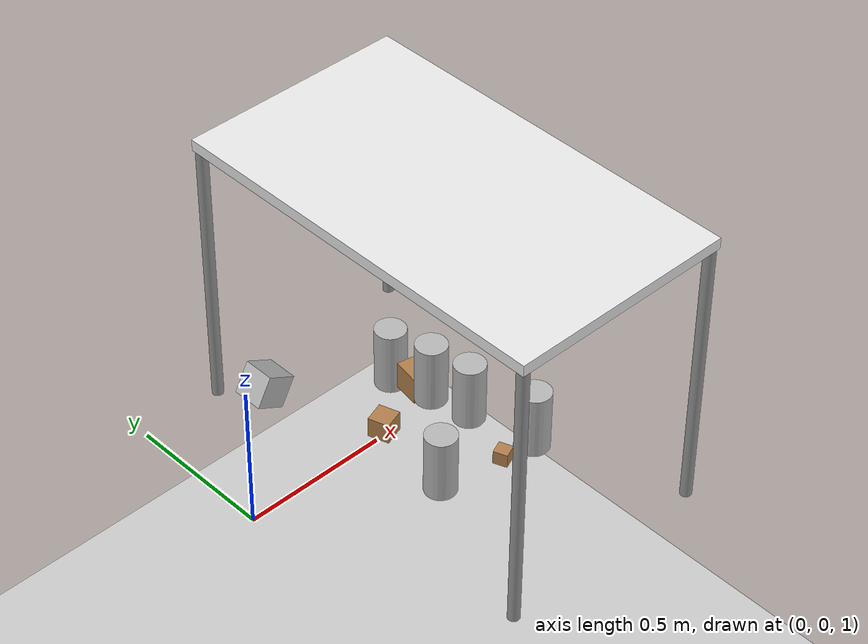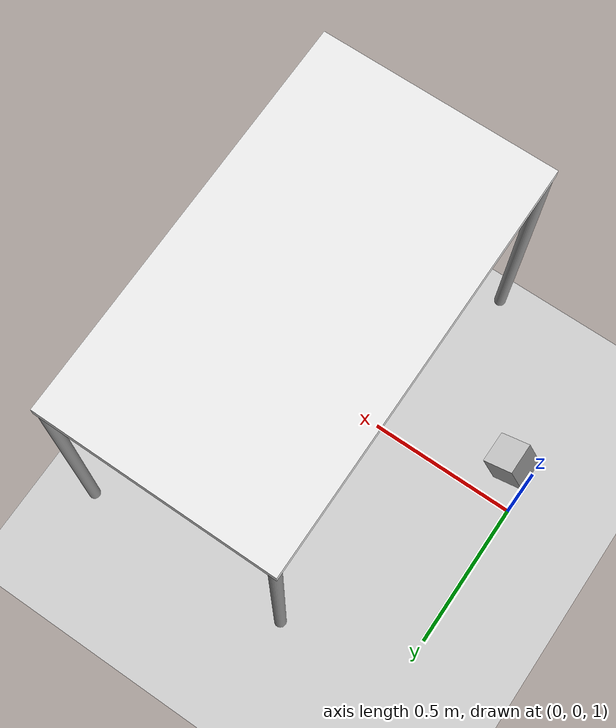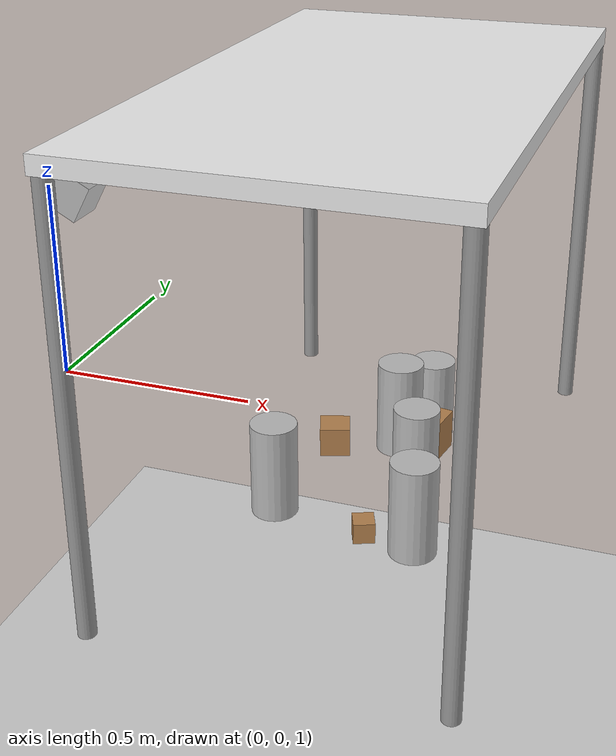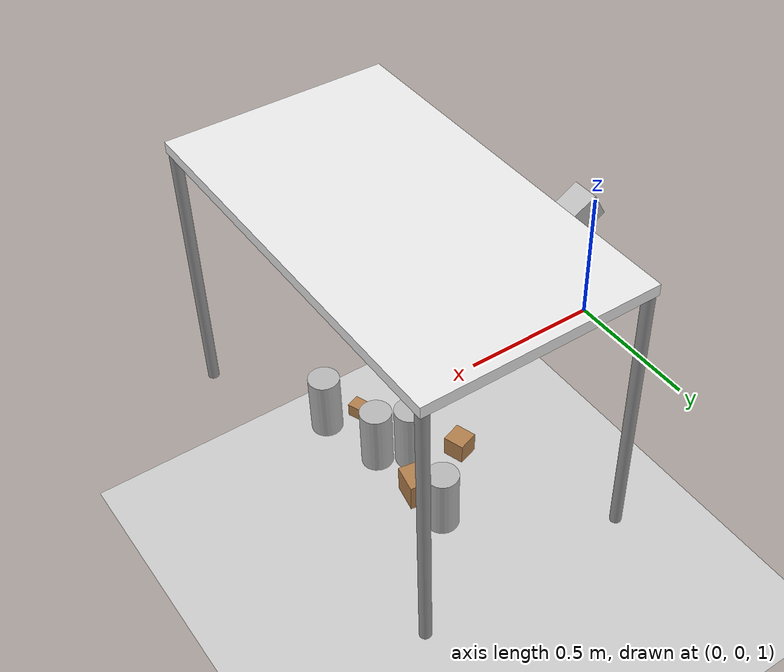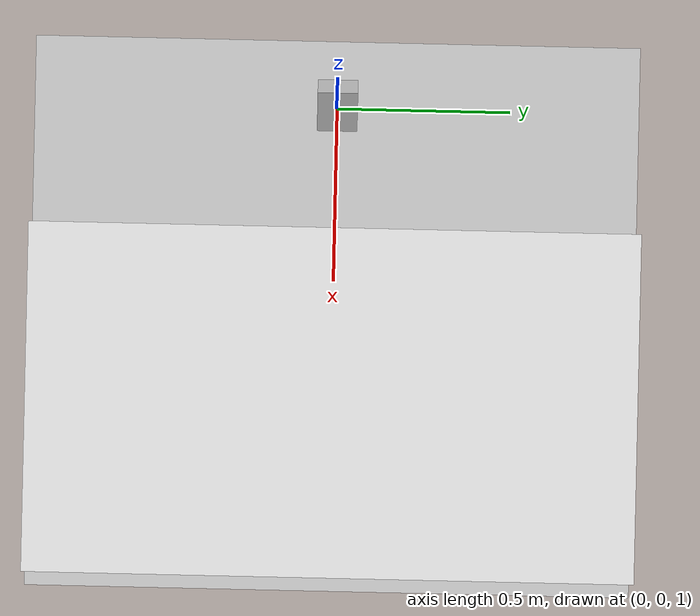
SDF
<sdf version="1.6">
 <world name="default">
  <model name="ground_plane">
   <static>1</static>
   <link name="link">
    <collision name="collision">
     <geometry><plane><normal>0 0 1</normal><size>100 100</size></plane></geometry>
     <surface><friction><ode><mu>100</mu><mu2>50</mu2></ode></friction></surface>
    </collision>
    <visual name="visual">
     <cast_shadows>0</cast_shadows>
     <geometry><plane><normal>0 0 1</normal><size>100 100</size></plane></geometry>
     <material>
      <script><uri>file://media/materials/scripts/gazebo.material</uri><name>Gazebo/Grey</name></script>
     </material>
    </visual>
   </link>
  </model>
  <gravity>0 0 -9.8</gravity>
  <magnetic_field>6e-06 2.3e-05 -4.2e-05</magnetic_field>
  <atmosphere type="adiabatic"/>
  <physics name="default_physics" default="0" type="ode">
   <max_step_size>0.001</max_step_size>
   <real_time_factor>1</real_time_factor>
   <real_time_update_rate>1000</real_time_update_rate>
  </physics>
  <scene><ambient>0.4 0.4 0.4 1</ambient><background>0.7 0.7 0.7 1</background><shadows>1</shadows></scene>
  <spherical_coordinates>
   <surface_model>EARTH_WGS84</surface_model>
   <latitude_deg>0</latitude_deg>
   <longitude_deg>0</longitude_deg>
   <elevation>0</elevation>
   <heading_deg>0</heading_deg>
  </spherical_coordinates>
  <model name="kinect2_victor_head">
   <pose>0.07 0 1.5 0 0.5 0</pose>
   <static>1</static>
   <link name="kinect2_victor_head">
    <inertial>
     <mass>1</mass>
     <inertia><ixx>1</ixx><ixy>0</ixy><ixz>0</ixz><iyy>1</iyy><iyz>0</iyz><izz>1</izz></inertia>
    </inertial>
    <collision name="collision"><geometry><box><size>0.1 0.1 0.1</size></box></geometry></collision>
    <visual name="visual"><geometry><box><size>0.1 0.1 0.1</size></box></geometry></visual>
    <sensor name="camera" type="depth">
     <camera name="__default__">
      <horizontal_fov>1.578</horizontal_fov>
      <image><width>1920</width><height>1080</height><format>B8G8R8</format></image>
      <clip><near>0.05</near><far>2.5</far></clip>
      <depth_camera><output>depths</output></depth_camera>
     </camera>
     <plugin name="kinect2_victor_head_plugin" filename="libgazebo_ros_openni_kinect.so">
      <cameraName>kinect2_victor_head</cameraName>
      <alwaysOn>1</alwaysOn>
      <updateRate>3</updateRate>
      <imageTopicName>hd/image_color_rect</imageTopicName>
      <depthImageTopicName>hd/image_depth_rect</depthImageTopicName>
      <pointCloudTopicName>hd/points</pointCloudTopicName>
      <cameraInfoTopicName>hd/camera_info</cameraInfoTopicName>
      <depthImageCameraInfoTopicName>hd/camera_info</depthImageCameraInfoTopicName>
      <frameName>kinect2_victor_head_optical_frame</frameName>
      <baseline>0.07</baseline>
      <distortion_k1>0.0</distortion_k1>
      <distortion_k2>0.0</distortion_k2>
      <distortion_k3>0.0</distortion_k3>
      <distortion_t1>0.0</distortion_t1>
      <distortion_t2>0.0</distortion_t2>
      <pointCloudCutoff>0.05</pointCloudCutoff>
      <robotNamespace>/</robotNamespace>
     </plugin>
     <always_on>1</always_on>
     <update_rate>3</update_rate>
    </sensor>
    <gravity>0</gravity>
   </link>
  </model>
  <model name="table">
   <static>1</static>
   <link name="link">
    <pose>0 0 1 0 -0 0</pose>
    <collision name="surface">
     <pose>0 0 1 0 -0 0</pose>
     <geometry><box><size>1.5 0.8 0.03</size></box></geometry>
     <surface><friction><ode><mu>0.6</mu><mu2>0.6</mu2></ode></friction></surface>
    </collision>
    <visual name="visual1">
     <pose>0 0 1 0 -0 0</pose>
     <geometry><box><size>1.4 0.8 0.04</size></box></geometry>
     <material>
      <script><uri>file://media/materials/scripts/gazebo.material</uri><name>Gazebo/White</name></script>
     </material>
    </visual>
    <collision name="front_left_leg">
     <pose>0.68 0.38 0.5 0 -0 0</pose>
     <geometry><cylinder><radius>0.02</radius><length>1</length></cylinder></geometry>
    </collision>
    <visual name="front_left_leg">
     <pose>0.68 0.38 0.5 0 -0 0</pose>
     <geometry><cylinder><radius>0.02</radius><length>1</length></cylinder></geometry>
     <material>
      <script><uri>file://media/materials/scripts/gazebo.material</uri><name>Gazebo/Grey</name></script>
     </material>
    </visual>
    <collision name="front_right_leg">
     <pose>0.68 -0.38 0.5 0 -0 0</pose>
     <geometry><cylinder><radius>0.02</radius><length>1</length></cylinder></geometry>
    </collision>
    <visual name="front_right_leg">
     <pose>0.68 -0.38 0.5 0 -0 0</pose>
     <geometry><cylinder><radius>0.02</radius><length>1</length></cylinder></geometry>
     <material>
      <script><uri>file://media/materials/scripts/gazebo.material</uri><name>Gazebo/Grey</name></script>
     </material>
    </visual>
    <collision name="back_right_leg">
     <pose>-0.68 -0.38 0.5 0 -0 0</pose>
     <geometry><cylinder><radius>0.02</radius><length>1</length></cylinder></geometry>
    </collision>
    <visual name="back_right_leg">
     <pose>-0.68 -0.38 0.5 0 -0 0</pose>
     <geometry><cylinder><radius>0.02</radius><length>1</length></cylinder></geometry>
     <material>
      <script><uri>file://media/materials/scripts/gazebo.material</uri><name>Gazebo/Grey</name></script>
     </material>
    </visual>
    <collision name="back_left_leg">
     <pose>-0.68 0.38 0.5 0 -0 0</pose>
     <geometry><cylinder><radius>0.02</radius><length>1</length></cylinder></geometry>
    </collision>
    <visual name="back_left_leg">
     <pose>-0.68 0.38 0.5 0 -0 0</pose>
     <geometry><cylinder><radius>0.02</radius><length>1</length></cylinder></geometry>
     <material>
      <script><uri>file://media/materials/scripts/gazebo.material</uri><name>Gazebo/Grey</name></script>
     </material>
    </visual>
    <inertial>
     <inertia><ixx>1</ixx><ixy>0</ixy><ixz>0</ixz><iyy>1</iyy><iyz>0</iyz><izz>1</izz></inertia>
     <mass>1</mass>
    </inertial>
   </link>
   <pose>0.8 0 -0.2 0 0 -1.5708</pose>
  </model>
  <model name="beer">
   <link name="link">
    <pose>0 0 0.115 0 -0 0</pose>
    <inertial>
     <mass>0.39</mass>
     <inertia><ixx>0.00058</ixx><ixy>0</ixy><ixz>0</ixz><iyy>0.00058</iyy><iyz>0</iyz><izz>0.00019</izz></inertia>
    </inertial>
    <collision name="collision">
     <geometry><cylinder><radius>0.055</radius><length>0.23</length></cylinder></geometry>
    </collision>
    <visual name="visual">
     <geometry><cylinder><radius>0.055</radius><length>0.23</length></cylinder></geometry>
     <material>
      <script>
       <uri>model://beer/materials/scripts</uri>
       <uri>model://beer/materials/textures</uri>
       <name>Beer/Diffuse</name>
      </script>
     </material>
    </visual>
   </link>
   <pose>0.918819 0.02026 0.815003 5e-06 4.6e-05 0.324279</pose>
  </model>
  <light name="user_spot_light_0" type="spot">
   <pose>0 0 20 0 -0 0</pose>
   <diffuse>0.5 0.5 0.5 1</diffuse>
   <specular>0.1 0.1 0.1 1</specular>
   <direction>0 0 -1</direction>
   <attenuation>
    <range>20</range>
    <constant>0.5</constant>
    <linear>0.01</linear>
    <quadratic>0.001</quadratic>
   </attenuation>
   <cast_shadows>0</cast_shadows>
   <spot><inner_angle>0.6</inner_angle><outer_angle>1</outer_angle><falloff>1</falloff></spot>
  </light>
  <model name="wood_cube_10cm">
   <link name="link">
    <pose>0 0 0.05 0 -0 0</pose>
    <inertial>
     <mass>0.5167</mass>
     <inertia>
      <ixx>0.000861167</ixx>
      <ixy>0</ixy>
      <ixz>0</ixz>
      <iyy>0.000861167</iyy>
      <iyz>0</iyz>
      <izz>0.000861167</izz>
     </inertia>
    </inertial>
    <collision name="collision">
     <geometry><box><size>0.1 0.1 0.1</size></box></geometry>
     <surface>
      <contact>
       <poissons_ratio>0.347</poissons_ratio>
       <elastic_modulus>8.8e+09</elastic_modulus>
       <ode><kp>100000</kp><kd>100</kd><max_vel>100</max_vel><min_depth>0.001</min_depth></ode>
      </contact>
      <friction>
       <torsional>
        <coefficient>1</coefficient>
        <use_patch_radius>0</use_patch_radius>
        <surface_radius>0.01</surface_radius>
       </torsional>
      </friction>
     </surface>
    </collision>
    <visual name="visual">
     <geometry><box><size>0.1 0.1 0.1</size></box></geometry>
     <material>
      <script><uri>file://media/materials/scripts/gazebo.material</uri><name>Gazebo/Wood</name></script>
     </material>
    </visual>
   </link>
   <pose>0.892609 0.22803 0.813987 0 -0 -0.174471</pose>
  </model>
  <model name="wood_cube_7_5cm">
   <link name="link">
    <pose>0 0 0.0375 0 -0 0</pose>
    <inertial>
     <mass>0.2249</mass>
     <inertia>
      <ixx>0.000210844</ixx>
      <ixy>0</ixy>
      <ixz>0</ixz>
      <iyy>0.000210844</iyy>
      <iyz>0</iyz>
      <izz>0.000210844</izz>
     </inertia>
    </inertial>
    <collision name="collision">
     <geometry><box><size>0.075 0.075 0.075</size></box></geometry>
     <surface>
      <contact>
       <poissons_ratio>0.347</poissons_ratio>
       <elastic_modulus>8.8e+09</elastic_modulus>
       <ode><kp>100000</kp><kd>100</kd><max_vel>100</max_vel><min_depth>0.001</min_depth></ode>
      </contact>
      <friction>
       <torsional>
        <coefficient>1</coefficient>
        <use_patch_radius>0</use_patch_radius>
        <surface_radius>0.01</surface_radius>
       </torsional>
      </friction>
     </surface>
    </collision>
    <visual name="visual">
     <geometry><box><size>0.075 0.075 0.075</size></box></geometry>
     <material>
      <script><uri>file://media/materials/scripts/gazebo.material</uri><name>Gazebo/Wood</name></script>
     </material>
    </visual>
   </link>
   <pose>0.636133 0.143221 0.851495 -1.5708 -0 -1.25089</pose>
  </model>
  <model name="beer_0">
   <link name="link">
    <pose>0 0 0.115 0 -0 0</pose>
    <inertial>
     <mass>0.39</mass>
     <inertia><ixx>0.00058</ixx><ixy>0</ixy><ixz>0</ixz><iyy>0.00058</iyy><iyz>0</iyz><izz>0.00019</izz></inertia>
    </inertial>
    <collision name="collision">
     <geometry><cylinder><radius>0.055</radius><length>0.23</length></cylinder></geometry>
    </collision>
    <visual name="visual">
     <geometry><cylinder><radius>0.055</radius><length>0.23</length></cylinder></geometry>
     <material>
      <script>
       <uri>model://beer/materials/scripts</uri>
       <uri>model://beer/materials/textures</uri>
       <name>Beer/Diffuse</name>
      </script>
     </material>
    </visual>
   </link>
   <pose>0.878148 0.345134 0.780491 -2e-06 -1e-06 0.023062</pose>
  </model>
  <model name="wood_cube_5cm">
   <link name="link">
    <pose>0 0 0.025 0 -0 0</pose>
    <inertial>
     <mass>0.0565</mass>
     <inertia>
      <ixx>2.35417e-05</ixx>
      <ixy>0</ixy>
      <ixz>0</ixz>
      <iyy>2.35417e-05</iyy>
      <iyz>0</iyz>
      <izz>2.35417e-05</izz>
     </inertia>
    </inertial>
    <collision name="collision">
     <geometry><box><size>0.05 0.05 0.05</size></box></geometry>
     <surface>
      <contact>
       <poissons_ratio>0.347</poissons_ratio>
       <elastic_modulus>8.8e+09</elastic_modulus>
       <ode><kp>100000</kp><kd>1</kd><max_vel>1</max_vel><min_depth>0.001</min_depth></ode>
      </contact>
      <friction>
       <torsional>
        <coefficient>1</coefficient>
        <use_patch_radius>0</use_patch_radius>
        <surface_radius>0.05</surface_radius>
       </torsional>
      </friction>
     </surface>
    </collision>
    <visual name="visual">
     <geometry><box><size>0.05 0.05 0.05</size></box></geometry>
     <material>
      <script><uri>file://media/materials/scripts/gazebo.material</uri><name>Gazebo/Wood</name></script>
     </material>
    </visual>
   </link>
   <pose>0.857553 -0.196141 0.813999 0 -0 0.382114</pose>
  </model>
  <audio><device>default</device></audio>
  <model name="beer_1">
   <link name="link">
    <pose>0 0 0.115 0 -0 0</pose>
    <inertial>
     <mass>0.39</mass>
     <inertia><ixx>0.00058</ixx><ixy>0</ixy><ixz>0</ixz><iyy>0.00058</iyy><iyz>0</iyz><izz>0.00019</izz></inertia>
    </inertial>
    <collision name="collision">
     <geometry><cylinder><radius>0.055</radius><length>0.23</length></cylinder></geometry>
    </collision>
    <visual name="visual">
     <geometry><cylinder><radius>0.055</radius><length>0.23</length></cylinder></geometry>
     <material>
      <script>
       <uri>model://beer/materials/scripts</uri>
       <uri>model://beer/materials/textures</uri>
       <name>Beer/Diffuse</name>
      </script>
     </material>
    </visual>
   </link>
   <pose>0.849453 0.124198 0.872495 2.7e-05 8.5e-05 0.013326</pose>
  </model>
  <model name="beer_2">
   <link name="link">
    <pose>0 0 0.115 0 -0 0</pose>
    <inertial>
     <mass>0.39</mass>
     <inertia><ixx>0.00058</ixx><ixy>0</ixy><ixz>0</ixz><iyy>0.00058</iyy><iyz>0</iyz><izz>0.00019</izz></inertia>
    </inertial>
    <collision name="collision">
     <geometry><cylinder><radius>0.055</radius><length>0.23</length></cylinder></geometry>
    </collision>
    <visual name="visual">
     <geometry><cylinder><radius>0.055</radius><length>0.23</length></cylinder></geometry>
     <material>
      <script>
       <uri>model://beer/materials/scripts</uri>
       <uri>model://beer/materials/textures</uri>
       <name>Beer/Diffuse</name>
      </script>
     </material>
    </visual>
   </link>
   <pose>0.976836 -0.212835 0.81499 0 -1.9e-05 1.59987</pose>
  </model>
  <model name="beer_3">
   <link name="link">
    <pose>0 0 0.115 0 -0 0</pose>
    <inertial>
     <mass>0.39</mass>
     <inertia><ixx>0.00058</ixx><ixy>0</ixy><ixz>0</ixz><iyy>0.00058</iyy><iyz>0</iyz><izz>0.00019</izz></inertia>
    </inertial>
    <collision name="collision">
     <geometry><cylinder><radius>0.055</radius><length>0.23</length></cylinder></geometry>
    </collision>
    <visual name="visual">
     <geometry><cylinder><radius>0.055</radius><length>0.23</length></cylinder></geometry>
     <material>
      <script>
       <uri>model://beer/materials/scripts</uri>
       <uri>model://beer/materials/textures</uri>
       <name>Beer/Diffuse</name>
      </script>
     </material>
    </visual>
   </link>
   <pose>0.62622 -0.15254 0.814992 1.1e-05 1.4e-05 -0.686361</pose>
  </model>
 </world>
</sdf>
